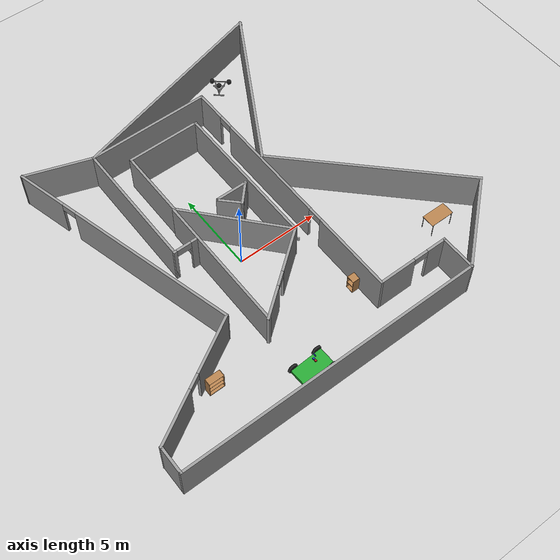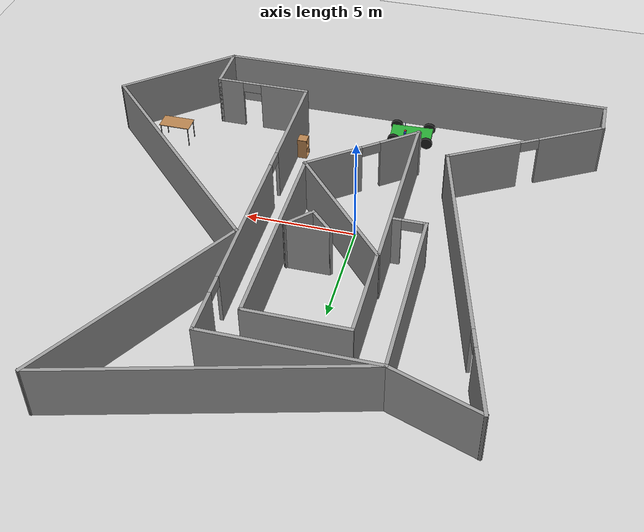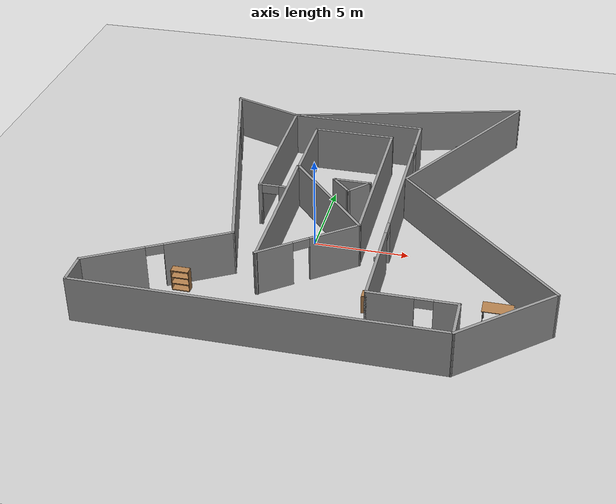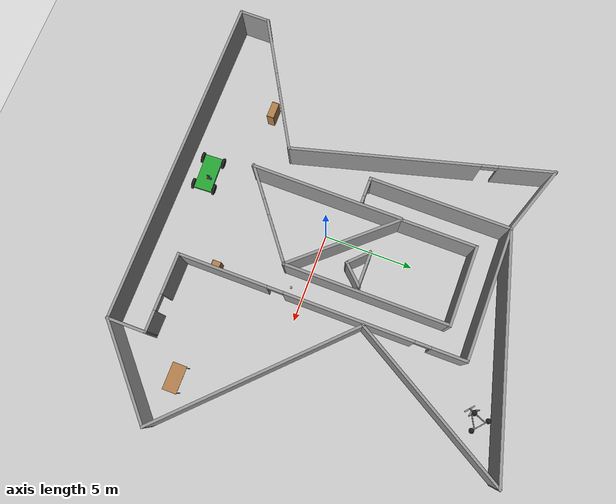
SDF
<sdf version="1.7">
 <world name="custom">
  <model name="ground_plane">
   <static>1</static>
   <link name="link">
    <collision name="collision">
     <geometry><plane><normal>0 0 1</normal><size>100 100</size></plane></geometry>
     <surface><friction><ode><mu>100</mu><mu2>50</mu2></ode></friction></surface>
    </collision>
    <visual name="visual">
     <cast_shadows>0</cast_shadows>
     <geometry><plane><normal>0 0 1</normal><size>100 100</size></plane></geometry>
     <material>
      <script><uri>file://media/materials/scripts/gazebo.material</uri><name>Gazebo/Grey</name></script>
     </material>
    </visual>
   </link>
  </model>
  <light name="sun" type="directional">
   <pose>0 0 10 0 -0 0</pose>
   <diffuse>0.8 0.8 0.8 1</diffuse>
   <specular>0.2 0.2 0.2 1</specular>
   <attenuation>
    <range>1000</range>
    <constant>0.9</constant>
    <linear>0.01</linear>
    <quadratic>0.001</quadratic>
   </attenuation>
   <direction>-0.5 0.1 -0.9</direction>
   <spot><inner_angle>0</inner_angle><outer_angle>0</outer_angle><falloff>0</falloff></spot>
  </light>
  <scene><shadows>0</shadows><ambient>0.4 0.4 0.4 1</ambient><background>0.7 0.7 0.7 1</background></scene>
  <physics type="ode">
   <real_time_update_rate>1000</real_time_update_rate>
   <max_step_size>0.001</max_step_size>
   <real_time_factor>1</real_time_factor>
   <ode>
    <solver>
     <type>quick</type>
     <iters>150</iters>
     <precon_iters>0</precon_iters>
     <sor>1.4</sor>
     <use_dynamic_moi_rescaling>1</use_dynamic_moi_rescaling>
    </solver>
    <constraints>
     <cfm>1e-05</cfm>
     <erp>0.2</erp>
     <contact_max_correcting_vel>2000</contact_max_correcting_vel>
     <contact_surface_layer>0.01</contact_surface_layer>
    </constraints>
   </ode>
  </physics>
  <gravity>0 0 -9.8</gravity>
  <magnetic_field>6e-06 2.3e-05 -4.2e-05</magnetic_field>
  <atmosphere type="adiabatic"/>
  <audio><device>default</device></audio>
  <spherical_coordinates>
   <surface_model>EARTH_WGS84</surface_model>
   <latitude_deg>0</latitude_deg>
   <longitude_deg>0</longitude_deg>
   <elevation>0</elevation>
   <heading_deg>0</heading_deg>
  </spherical_coordinates>
  <model name="random">
   <pose>1.38852 1.87257 0 0 -0 0</pose>
   <link name="Wall_1">
    <collision name="Wall_1_Collision">
     <geometry><box><size>4.5 0.15 2.5</size></box></geometry>
     <pose>0 0 1.25 0 -0 0</pose>
    </collision>
    <visual name="Wall_1_Visual">
     <pose>0 0 1.25 0 -0 0</pose>
     <geometry><box><size>4.5 0.15 2.5</size></box></geometry>
     <material>
      <script><uri>file://media/materials/scripts/gazebo.material</uri><name>Gazebo/Grey</name></script>
      <ambient>1 1 1 1</ambient>
     </material>
     <meta><layer>0</layer></meta>
    </visual>
    <pose>-0.932959 5.89096 0 0 -0 3.14159</pose>
   </link>
   <link name="Wall_11">
    <pose>-4.01912 -0.568563 0 0 -0 3.14159</pose>
    <visual name="Wall_11_Visual_0">
     <pose>-0.556592 0 1.25 0 -0 0</pose>
     <geometry><box><size>0.386816 0.15 2.5</size></box></geometry>
     <material>
      <script><uri>file://media/materials/scripts/gazebo.material</uri><name>Gazebo/Grey</name></script>
      <ambient>1 1 1 1</ambient>
     </material>
     <meta><layer>0</layer></meta>
    </visual>
    <collision name="Wall_11_Collision_0">
     <geometry><box><size>0.386816 0.15 2.5</size></box></geometry>
     <pose>-0.556592 0 1.25 0 -0 0</pose>
    </collision>
    <visual name="Wall_11_Visual_1">
     <pose>0.643408 0 1.25 0 -0 0</pose>
     <geometry><box><size>0.213184 0.15 2.5</size></box></geometry>
     <material>
      <script><uri>file://media/materials/scripts/gazebo.material</uri><name>Gazebo/Grey</name></script>
      <ambient>1 1 1 1</ambient>
     </material>
     <meta><layer>0</layer></meta>
    </visual>
    <collision name="Wall_11_Collision_1">
     <geometry><box><size>0.213184 0.15 2.5</size></box></geometry>
     <pose>0.643408 0 1.25 0 -0 0</pose>
    </collision>
    <visual name="Wall_11_Visual_2">
     <pose>0.086816 0 2.25 0 -0 0</pose>
     <geometry><box><size>0.9 0.15 0.5</size></box></geometry>
     <material>
      <script><uri>file://media/materials/scripts/gazebo.material</uri><name>Gazebo/Grey</name></script>
      <ambient>1 1 1 1</ambient>
     </material>
     <meta><layer>0</layer></meta>
    </visual>
    <collision name="Wall_11_Collision_2">
     <geometry><box><size>0.9 0.15 0.5</size></box></geometry>
     <pose>0.086816 0 2.25 0 -0 0</pose>
    </collision>
   </link>
   <link name="Wall_12">
    <collision name="Wall_12_Collision">
     <geometry><box><size>8 0.15 2.5</size></box></geometry>
     <pose>0 0 1.25 0 -0 0</pose>
    </collision>
    <visual name="Wall_12_Visual">
     <pose>0 0 1.25 0 -0 0</pose>
     <geometry><box><size>8 0.15 2.5</size></box></geometry>
     <material>
      <script><uri>file://media/materials/scripts/gazebo.material</uri><name>Gazebo/Grey</name></script>
      <ambient>1 1 1 1</ambient>
     </material>
     <meta><layer>0</layer></meta>
    </visual>
    <pose>-4.69412 3.35644 0 0 -0 1.5708</pose>
   </link>
   <link name="Wall_13">
    <collision name="Wall_13_Collision">
     <geometry><box><size>7.5 0.15 2.5</size></box></geometry>
     <pose>0 0 1.25 0 -0 0</pose>
    </collision>
    <visual name="Wall_13_Visual">
     <pose>0 0 1.25 0 -0 0</pose>
     <geometry><box><size>7.5 0.15 2.5</size></box></geometry>
     <material>
      <script><uri>file://media/materials/scripts/gazebo.material</uri><name>Gazebo/Grey</name></script>
      <ambient>1 1 1 1</ambient>
     </material>
     <meta><layer>0</layer></meta>
    </visual>
    <pose>-1.01912 7.28144 0 0 -0 0</pose>
   </link>
   <link name="Wall_14">
    <pose>2.65588 -0.643563 0 0 -0 -1.5708</pose>
    <visual name="Wall_14_Visual_0">
     <pose>-6.99776 0 1.25 0 -0 0</pose>
     <geometry><box><size>2.00447 0.15 2.5</size></box></geometry>
     <material>
      <script><uri>file://media/materials/scripts/gazebo.material</uri><name>Gazebo/Grey</name></script>
      <ambient>1 1 1 1</ambient>
     </material>
     <meta><layer>0</layer></meta>
    </visual>
    <collision name="Wall_14_Collision_0">
     <geometry><box><size>2.00447 0.15 2.5</size></box></geometry>
     <pose>-6.99776 0 1.25 0 -0 0</pose>
    </collision>
    <visual name="Wall_14_Visual_1">
     <pose>-1.51005 0 1.25 0 -0 0</pose>
     <geometry><box><size>7.17095 0.15 2.5</size></box></geometry>
     <material>
      <script><uri>file://media/materials/scripts/gazebo.material</uri><name>Gazebo/Grey</name></script>
      <ambient>1 1 1 1</ambient>
     </material>
     <meta><layer>0</layer></meta>
    </visual>
    <collision name="Wall_14_Collision_1">
     <geometry><box><size>7.17095 0.15 2.5</size></box></geometry>
     <pose>-1.51005 0 1.25 0 -0 0</pose>
    </collision>
    <visual name="Wall_14_Visual_2">
     <pose>5.48771 0 1.25 0 -0 0</pose>
     <geometry><box><size>5.02458 0.15 2.5</size></box></geometry>
     <material>
      <script><uri>file://media/materials/scripts/gazebo.material</uri><name>Gazebo/Grey</name></script>
      <ambient>1 1 1 1</ambient>
     </material>
     <meta><layer>0</layer></meta>
    </visual>
    <collision name="Wall_14_Collision_2">
     <geometry><box><size>5.02458 0.15 2.5</size></box></geometry>
     <pose>5.48771 0 1.25 0 -0 0</pose>
    </collision>
    <visual name="Wall_14_Visual_3">
     <pose>-5.54552 0 2.25 0 -0 0</pose>
     <geometry><box><size>0.9 0.15 0.5</size></box></geometry>
     <material>
      <script><uri>file://media/materials/scripts/gazebo.material</uri><name>Gazebo/Grey</name></script>
      <ambient>1 1 1 1</ambient>
     </material>
     <meta><layer>0</layer></meta>
    </visual>
    <collision name="Wall_14_Collision_3">
     <geometry><box><size>0.9 0.15 0.5</size></box></geometry>
     <pose>-5.54552 0 2.25 0 -0 0</pose>
    </collision>
    <visual name="Wall_14_Visual_4">
     <pose>2.52542 0 2.25 0 -0 0</pose>
     <geometry><box><size>0.9 0.15 0.5</size></box></geometry>
     <material>
      <script><uri>file://media/materials/scripts/gazebo.material</uri><name>Gazebo/Grey</name></script>
      <ambient>1 1 1 1</ambient>
     </material>
     <meta><layer>0</layer></meta>
    </visual>
    <collision name="Wall_14_Collision_4">
     <geometry><box><size>0.9 0.15 0.5</size></box></geometry>
     <pose>2.52542 0 2.25 0 -0 0</pose>
    </collision>
   </link>
   <link name="Wall_15">
    <pose>4.83088 -8.56856 0 0 -0 0</pose>
    <visual name="Wall_15_Visual_0">
     <pose>-1.08345 0 1.25 0 -0 0</pose>
     <geometry><box><size>2.3331 0.15 2.5</size></box></geometry>
     <material>
      <script><uri>file://media/materials/scripts/gazebo.material</uri><name>Gazebo/Grey</name></script>
      <ambient>1 1 1 1</ambient>
     </material>
     <meta><layer>0</layer></meta>
    </visual>
    <collision name="Wall_15_Collision_0">
     <geometry><box><size>2.3331 0.15 2.5</size></box></geometry>
     <pose>-1.08345 0 1.25 0 -0 0</pose>
    </collision>
    <visual name="Wall_15_Visual_1">
     <pose>1.61655 0 1.25 0 -0 0</pose>
     <geometry><box><size>1.2669 0.15 2.5</size></box></geometry>
     <material>
      <script><uri>file://media/materials/scripts/gazebo.material</uri><name>Gazebo/Grey</name></script>
      <ambient>1 1 1 1</ambient>
     </material>
     <meta><layer>0</layer></meta>
    </visual>
    <collision name="Wall_15_Collision_1">
     <geometry><box><size>1.2669 0.15 2.5</size></box></geometry>
     <pose>1.61655 0 1.25 0 -0 0</pose>
    </collision>
    <visual name="Wall_15_Visual_2">
     <pose>0.533097 0 2.25 0 -0 0</pose>
     <geometry><box><size>0.9 0.15 0.5</size></box></geometry>
     <material>
      <script><uri>file://media/materials/scripts/gazebo.material</uri><name>Gazebo/Grey</name></script>
      <ambient>1 1 1 1</ambient>
     </material>
     <meta><layer>0</layer></meta>
    </visual>
    <collision name="Wall_15_Collision_2">
     <geometry><box><size>0.9 0.15 0.5</size></box></geometry>
     <pose>0.533097 0 2.25 0 -0 0</pose>
    </collision>
   </link>
   <link name="Wall_16">
    <collision name="Wall_16_Collision">
     <geometry><box><size>2.25 0.15 2.5</size></box></geometry>
     <pose>0 0 1.25 0 -0 0</pose>
    </collision>
    <visual name="Wall_16_Visual">
     <pose>0 0 1.25 0 -0 0</pose>
     <geometry><box><size>2.25 0.15 2.5</size></box></geometry>
     <material>
      <script><uri>file://media/materials/scripts/gazebo.material</uri><name>Gazebo/Grey</name></script>
      <ambient>1 1 1 1</ambient>
     </material>
     <meta><layer>0</layer></meta>
    </visual>
    <pose>7.00588 -9.61856 0 0 -0 -1.5708</pose>
   </link>
   <link name="Wall_17">
    <collision name="Wall_17_Collision">
     <geometry><box><size>18.5 0.15 2.5</size></box></geometry>
     <pose>0 0 1.25 0 -0 0</pose>
    </collision>
    <visual name="Wall_17_Visual">
     <pose>0 0 1.25 0 -0 0</pose>
     <geometry><box><size>18.5 0.15 2.5</size></box></geometry>
     <material>
      <script><uri>file://media/materials/scripts/gazebo.material</uri><name>Gazebo/Grey</name></script>
      <ambient>1 1 1 1</ambient>
     </material>
     <meta><layer>0</layer></meta>
    </visual>
    <pose>-2.16912 -10.6686 0 0 -0 3.14159</pose>
   </link>
   <link name="Wall_18">
    <collision name="Wall_18_Collision">
     <geometry><box><size>1.75 0.15 2.5</size></box></geometry>
     <pose>0 0 1.25 0 -0 0</pose>
    </collision>
    <visual name="Wall_18_Visual">
     <pose>0 0 1.25 0 -0 0</pose>
     <geometry><box><size>1.75 0.15 2.5</size></box></geometry>
     <material>
      <script><uri>file://media/materials/scripts/gazebo.material</uri><name>Gazebo/Grey</name></script>
      <ambient>1 1 1 1</ambient>
     </material>
     <meta><layer>0</layer></meta>
    </visual>
    <pose>-11.3441 -9.86856 0 0 -0 1.5708</pose>
   </link>
   <link name="Wall_19">
    <pose>-8.05322 -7.16856 0 0 -0 0.523599</pose>
    <visual name="Wall_19_Visual_0">
     <pose>-2.23815 0 1.25 0 -0 0</pose>
     <geometry><box><size>3.27371 0.15 2.5</size></box></geometry>
     <material>
      <script><uri>file://media/materials/scripts/gazebo.material</uri><name>Gazebo/Grey</name></script>
      <ambient>1 1 1 1</ambient>
     </material>
     <meta><layer>0</layer></meta>
    </visual>
    <collision name="Wall_19_Collision_0">
     <geometry><box><size>3.27371 0.15 2.5</size></box></geometry>
     <pose>-2.23815 0 1.25 0 -0 0</pose>
    </collision>
    <visual name="Wall_19_Visual_1">
     <pose>2.08685 0 1.25 0 -0 0</pose>
     <geometry><box><size>3.5763 0.15 2.5</size></box></geometry>
     <material>
      <script><uri>file://media/materials/scripts/gazebo.material</uri><name>Gazebo/Grey</name></script>
      <ambient>1 1 1 1</ambient>
     </material>
     <meta><layer>0</layer></meta>
    </visual>
    <collision name="Wall_19_Collision_1">
     <geometry><box><size>3.5763 0.15 2.5</size></box></geometry>
     <pose>2.08685 0 1.25 0 -0 0</pose>
    </collision>
    <visual name="Wall_19_Visual_2">
     <pose>-0.151295 0 2.25 0 -0 0</pose>
     <geometry><box><size>0.9 0.15 0.5</size></box></geometry>
     <material>
      <script><uri>file://media/materials/scripts/gazebo.material</uri><name>Gazebo/Grey</name></script>
      <ambient>1 1 1 1</ambient>
     </material>
     <meta><layer>0</layer></meta>
    </visual>
    <collision name="Wall_19_Collision_2">
     <geometry><box><size>0.9 0.15 0.5</size></box></geometry>
     <pose>-0.151295 0 2.25 0 -0 0</pose>
    </collision>
   </link>
   <link name="Wall_2">
    <collision name="Wall_2_Collision">
     <geometry><box><size>4.33045 0.15 2.5</size></box></geometry>
     <pose>0 0 1.25 0 -0 0</pose>
    </collision>
    <visual name="Wall_2_Visual">
     <pose>0 0 1.25 0 -0 0</pose>
     <geometry><box><size>4.33045 0.15 2.5</size></box></geometry>
     <material>
      <script><uri>file://media/materials/scripts/gazebo.material</uri><name>Gazebo/Grey</name></script>
      <ambient>1 1 1 1</ambient>
     </material>
     <meta><layer>0</layer></meta>
    </visual>
    <pose>-3.12807 3.80073 0 0 -0 -1.5708</pose>
   </link>
   <link name="Wall_20">
    <pose>-6.61935 1.66196 0 0 -0 1.8326</pose>
    <visual name="Wall_20_Visual_0">
     <pose>-2.02747 0 1.25 0 -0 0</pose>
     <geometry><box><size>10.445 0.15 2.5</size></box></geometry>
     <material>
      <script><uri>file://media/materials/scripts/gazebo.material</uri><name>Gazebo/Grey</name></script>
      <ambient>1 1 1 1</ambient>
     </material>
     <meta><layer>0</layer></meta>
    </visual>
    <collision name="Wall_20_Collision_0">
     <geometry><box><size>10.445 0.15 2.5</size></box></geometry>
     <pose>-2.02747 0 1.25 0 -0 0</pose>
    </collision>
    <visual name="Wall_20_Visual_1">
     <pose>5.67253 0 1.25 0 -0 0</pose>
     <geometry><box><size>3.15495 0.15 2.5</size></box></geometry>
     <material>
      <script><uri>file://media/materials/scripts/gazebo.material</uri><name>Gazebo/Grey</name></script>
      <ambient>1 1 1 1</ambient>
     </material>
     <meta><layer>0</layer></meta>
    </visual>
    <collision name="Wall_20_Collision_1">
     <geometry><box><size>3.15495 0.15 2.5</size></box></geometry>
     <pose>5.67253 0 1.25 0 -0 0</pose>
    </collision>
    <visual name="Wall_20_Visual_2">
     <pose>3.64505 0 2.25 0 -0 0</pose>
     <geometry><box><size>0.9 0.15 0.5</size></box></geometry>
     <material>
      <script><uri>file://media/materials/scripts/gazebo.material</uri><name>Gazebo/Grey</name></script>
      <ambient>1 1 1 1</ambient>
     </material>
     <meta><layer>0</layer></meta>
    </visual>
    <collision name="Wall_20_Collision_2">
     <geometry><box><size>0.9 0.15 0.5</size></box></geometry>
     <pose>3.64505 0 2.25 0 -0 0</pose>
    </collision>
   </link>
   <link name="Wall_21">
    <collision name="Wall_21_Collision">
     <geometry><box><size>4.15304 0.15 2.5</size></box></geometry>
     <pose>0 0 1.25 0 -0 0</pose>
    </collision>
    <visual name="Wall_21_Visual">
     <pose>0 0 1.25 0 -0 0</pose>
     <geometry><box><size>4.15304 0.15 2.5</size></box></geometry>
     <material>
      <script><uri>file://media/materials/scripts/gazebo.material</uri><name>Gazebo/Grey</name></script>
      <ambient>1 1 1 1</ambient>
     </material>
     <meta><layer>0</layer></meta>
    </visual>
    <pose>-6.58525 7.93696 0 0 -0 -0.333667</pose>
   </link>
   <link name="Wall_22">
    <collision name="Wall_22_Collision">
     <geometry><box><size>13.25 0.15 2.5</size></box></geometry>
     <pose>0 0 1.25 0 -0 0</pose>
    </collision>
    <visual name="Wall_22_Visual">
     <pose>0 0 1.25 0 -0 0</pose>
     <geometry><box><size>13.25 0.15 2.5</size></box></geometry>
     <material>
      <script><uri>file://media/materials/scripts/gazebo.material</uri><name>Gazebo/Grey</name></script>
      <ambient>1 1 1 1</ambient>
     </material>
     <meta><layer>0</layer></meta>
    </visual>
    <pose>1.6327 8.9767 0 0 -0 0.261799</pose>
   </link>
   <link name="Wall_23">
    <collision name="Wall_23_Collision">
     <geometry><box><size>10.5 0.15 2.5</size></box></geometry>
     <pose>0 0 1.25 0 -0 0</pose>
    </collision>
    <visual name="Wall_23_Visual">
     <pose>0 0 1.25 0 -0 0</pose>
     <geometry><box><size>10.5 0.15 2.5</size></box></geometry>
     <material>
      <script><uri>file://media/materials/scripts/gazebo.material</uri><name>Gazebo/Grey</name></script>
      <ambient>1 1 1 1</ambient>
     </material>
     <meta><layer>0</layer></meta>
    </visual>
    <pose>5.37201 6.19029 0 0 -0 -2.0944</pose>
   </link>
   <link name="Wall_24">
    <collision name="Wall_24_Collision">
     <geometry><box><size>12.25 0.15 2.5</size></box></geometry>
     <pose>0 0 1.25 0 -0 0</pose>
    </collision>
    <visual name="Wall_24_Visual">
     <pose>0 0 1.25 0 -0 0</pose>
     <geometry><box><size>12.25 0.15 2.5</size></box></geometry>
     <material>
      <script><uri>file://media/materials/scripts/gazebo.material</uri><name>Gazebo/Grey</name></script>
      <ambient>1 1 1 1</ambient>
     </material>
     <meta><layer>0</layer></meta>
    </visual>
    <pose>7.06251 -2.56939 0 0 -0 -0.785398</pose>
   </link>
   <link name="Wall_25">
    <collision name="Wall_25_Collision">
     <geometry><box><size>5.92844 0.15 2.5</size></box></geometry>
     <pose>0 0 1.25 0 -0 0</pose>
    </collision>
    <visual name="Wall_25_Visual">
     <pose>0 0 1.25 0 -0 0</pose>
     <geometry><box><size>5.92844 0.15 2.5</size></box></geometry>
     <material>
      <script><uri>file://media/materials/scripts/gazebo.material</uri><name>Gazebo/Grey</name></script>
      <ambient>1 1 1 1</ambient>
     </material>
     <meta><layer>0</layer></meta>
    </visual>
    <pose>9.17319 -8.75798 0 0 -0 -2.41907</pose>
   </link>
   <link name="Wall_27">
    <collision name="Wall_27_Collision">
     <geometry><box><size>2 0.15 2.5</size></box></geometry>
     <pose>0 0 1.25 0 -0 0</pose>
    </collision>
    <visual name="Wall_27_Visual">
     <pose>0 0 1.25 0 -0 0</pose>
     <geometry><box><size>2 0.15 2.5</size></box></geometry>
     <material>
      <script><uri>file://media/materials/scripts/gazebo.material</uri><name>Gazebo/Grey</name></script>
      <ambient>1 1 1 1</ambient>
     </material>
     <meta><layer>0</layer></meta>
    </visual>
    <pose>0.049186 0.795499 0 0 -0 0</pose>
   </link>
   <link name="Wall_28">
    <collision name="Wall_28_Collision">
     <geometry><box><size>1.53813 0.15 2.5</size></box></geometry>
     <pose>0 0 1.25 0 -0 0</pose>
    </collision>
    <visual name="Wall_28_Visual">
     <pose>0 0 1.25 0 -0 0</pose>
     <geometry><box><size>1.53813 0.15 2.5</size></box></geometry>
     <material>
      <script><uri>file://media/materials/scripts/gazebo.material</uri><name>Gazebo/Grey</name></script>
      <ambient>1 1 1 1</ambient>
     </material>
     <meta><layer>0</layer></meta>
    </visual>
    <pose>0.496888 0.318202 0 0 -0 -2.32909</pose>
   </link>
   <link name="Wall_29">
    <collision name="Wall_29_Collision">
     <geometry><box><size>1.5 0.15 2.5</size></box></geometry>
     <pose>0 0 1.25 0 -0 0</pose>
    </collision>
    <visual name="Wall_29_Visual">
     <pose>0 0 1.25 0 -0 0</pose>
     <geometry><box><size>1.5 0.15 2.5</size></box></geometry>
     <material>
      <script><uri>file://media/materials/scripts/gazebo.material</uri><name>Gazebo/Grey</name></script>
      <ambient>1 1 1 1</ambient>
     </material>
     <meta><layer>0</layer></meta>
    </visual>
    <pose>-0.457706 0.291602 0 0 -0 2.35619</pose>
   </link>
   <link name="Wall_3">
    <collision name="Wall_3_Collision">
     <geometry><box><size>6.6728 0.15 2.5</size></box></geometry>
     <pose>0 0 1.25 0 -0 0</pose>
    </collision>
    <visual name="Wall_3_Visual">
     <pose>0 0 1.25 0 -0 0</pose>
     <geometry><box><size>6.6728 0.15 2.5</size></box></geometry>
     <material>
      <script><uri>file://media/materials/scripts/gazebo.material</uri><name>Gazebo/Grey</name></script>
      <ambient>1 1 1 1</ambient>
     </material>
     <meta><layer>0</layer></meta>
    </visual>
    <pose>-0.973744 -0.738088 0 0 -0 -0.849241</pose>
   </link>
   <link name="Wall_4">
    <collision name="Wall_4_Collision">
     <geometry><box><size>9.25 0.15 2.5</size></box></geometry>
     <pose>0 0 1.25 0 -0 0</pose>
    </collision>
    <visual name="Wall_4_Visual">
     <pose>0 0 1.25 0 -0 0</pose>
     <geometry><box><size>9.25 0.15 2.5</size></box></geometry>
     <material>
      <script><uri>file://media/materials/scripts/gazebo.material</uri><name>Gazebo/Grey</name></script>
      <ambient>1 1 1 1</ambient>
     </material>
     <meta><layer>0</layer></meta>
    </visual>
    <pose>1.23409 1.30982 0 0 -0 1.5708</pose>
   </link>
   <link name="Wall_6">
    <collision name="Wall_6_Collision">
     <geometry><box><size>8.5 0.15 2.5</size></box></geometry>
     <pose>0 0 1.25 0 -0 0</pose>
    </collision>
    <visual name="Wall_6_Visual">
     <pose>0 0 1.25 0 -0 0</pose>
     <geometry><box><size>8.5 0.15 2.5</size></box></geometry>
     <material>
      <script><uri>file://media/materials/scripts/gazebo.material</uri><name>Gazebo/Grey</name></script>
      <ambient>1 1 1 1</ambient>
     </material>
     <meta><layer>0</layer></meta>
    </visual>
    <pose>-3.18229 -2.51851 0 0 -0 -1.5708</pose>
   </link>
   <link name="Wall_7">
    <pose>-0.994331 -4.96684 0 0 -0 0.659208</pose>
    <visual name="Wall_7_Visual_0">
     <pose>-1.86201 0 1.25 0 -0 0</pose>
     <geometry><box><size>2.06413 0.15 2.5</size></box></geometry>
     <material>
      <script><uri>file://media/materials/scripts/gazebo.material</uri><name>Gazebo/Grey</name></script>
      <ambient>1 1 1 1</ambient>
     </material>
     <meta><layer>0</layer></meta>
    </visual>
    <collision name="Wall_7_Collision_0">
     <geometry><box><size>2.06413 0.15 2.5</size></box></geometry>
     <pose>-1.86201 0 1.25 0 -0 0</pose>
    </collision>
    <visual name="Wall_7_Visual_1">
     <pose>1.48206 0 1.25 0 -0 0</pose>
     <geometry><box><size>2.82403 0.15 2.5</size></box></geometry>
     <material>
      <script><uri>file://media/materials/scripts/gazebo.material</uri><name>Gazebo/Grey</name></script>
      <ambient>1 1 1 1</ambient>
     </material>
     <meta><layer>0</layer></meta>
    </visual>
    <collision name="Wall_7_Collision_1">
     <geometry><box><size>2.82403 0.15 2.5</size></box></geometry>
     <pose>1.48206 0 1.25 0 -0 0</pose>
    </collision>
    <visual name="Wall_7_Visual_2">
     <pose>-0.37995 0 2.25 0 -0 0</pose>
     <geometry><box><size>0.9 0.15 0.5</size></box></geometry>
     <material>
      <script><uri>file://media/materials/scripts/gazebo.material</uri><name>Gazebo/Grey</name></script>
      <ambient>1 1 1 1</ambient>
     </material>
     <meta><layer>0</layer></meta>
    </visual>
    <collision name="Wall_7_Collision_2">
     <geometry><box><size>0.9 0.15 0.5</size></box></geometry>
     <pose>-0.37995 0 2.25 0 -0 0</pose>
    </collision>
   </link>
   <static>1</static>
  </model>
  <model name="cabinet">
   <static>1</static>
   <link name="cabinet_bottom_plate">
    <inertial>
     <pose>0 0 -1 0 -0 0</pose>
     <inertia><ixx>2.05</ixx><ixy>0</ixy><ixz>0</ixz><iyy>2.05</iyy><iyz>0</iyz><izz>2.05</izz></inertia>
     <mass>25</mass>
    </inertial>
    <collision name="cabinet_bottom_plate_geom">
     <pose>0 0 0.01 0 -0 0</pose>
     <geometry><box><size>0.45 0.45 0.02</size></box></geometry>
    </collision>
    <visual name="cabinet_bottom_plate_geom_visual">
     <pose>0 0 0.01 0 -0 0</pose>
     <geometry><box><size>0.45 0.45 0.02</size></box></geometry>
     <material>
      <script><uri>file://media/materials/scripts/gazebo.material</uri><name>Gazebo/Wood</name></script>
     </material>
    </visual>
    <collision name="cabinet_bottom_plate_geom_cabinet_back_plate">
     <pose>0.235 0 0.51 0 -0 0</pose>
     <geometry><box><size>0.02 0.45 1.02</size></box></geometry>
    </collision>
    <visual name="cabinet_bottom_plate_geom_cabinet_back_plate_visual">
     <pose>0.235 0 0.51 0 -0 0</pose>
     <geometry><box><size>0.02 0.45 1.02</size></box></geometry>
     <material>
      <script><uri>file://media/materials/scripts/gazebo.material</uri><name>Gazebo/Wood</name></script>
     </material>
    </visual>
    <collision name="cabinet_bottom_plate_geom_cabinet_left_plate">
     <pose>0 0.235 0.51 0 -0 0</pose>
     <geometry><box><size>0.45 0.02 1.02</size></box></geometry>
    </collision>
    <visual name="cabinet_bottom_plate_geom_cabinet_left_plate_visual">
     <pose>0 0.235 0.51 0 -0 0</pose>
     <geometry><box><size>0.45 0.02 1.02</size></box></geometry>
     <material>
      <script><uri>file://media/materials/scripts/gazebo.material</uri><name>Gazebo/Wood</name></script>
     </material>
    </visual>
    <collision name="cabinet_bottom_plate_geom_cabinet_middle_plate">
     <pose>0 0 0.51 0 -0 0</pose>
     <geometry><box><size>0.45 0.45 0.02</size></box></geometry>
    </collision>
    <visual name="cabinet_bottom_plate_geom_cabinet_middle_plate_visual">
     <pose>0 0 0.51 0 -0 0</pose>
     <geometry><box><size>0.45 0.45 0.02</size></box></geometry>
     <material>
      <script><uri>file://media/materials/scripts/gazebo.material</uri><name>Gazebo/Wood</name></script>
     </material>
    </visual>
    <collision name="cabinet_bottom_plate_geom_cabinet_right_plate">
     <pose>0 -0.235 0.51 0 -0 0</pose>
     <geometry><box><size>0.45 0.02 1.02</size></box></geometry>
    </collision>
    <visual name="cabinet_bottom_plate_geom_cabinet_right_plate_visual">
     <pose>0 -0.235 0.51 0 -0 0</pose>
     <geometry><box><size>0.45 0.02 1.02</size></box></geometry>
     <material>
      <script><uri>file://media/materials/scripts/gazebo.material</uri><name>Gazebo/Wood</name></script>
     </material>
    </visual>
    <collision name="cabinet_bottom_plate_geom_cabinet_top_plate">
     <pose>0 0 1.01 0 -0 0</pose>
     <geometry><box><size>0.45 0.45 0.02</size></box></geometry>
    </collision>
    <visual name="cabinet_bottom_plate_geom_cabinet_top_plate_visual">
     <pose>0 0 1.01 0 -0 0</pose>
     <geometry><box><size>0.45 0.45 0.02</size></box></geometry>
     <material>
      <script><uri>file://media/materials/scripts/gazebo.material</uri><name>Gazebo/Wood</name></script>
     </material>
    </visual>
   </link>
   <pose>3.74567 -4.96249 0 0 -0 0</pose>
  </model>
  <model name="beer">
   <link name="link">
    <pose>0 0 0.115 0 -0 0</pose>
    <inertial>
     <mass>0.39</mass>
     <inertia><ixx>0.00058</ixx><ixy>0</ixy><ixz>0</ixz><iyy>0.00058</iyy><iyz>0</iyz><izz>0.00019</izz></inertia>
    </inertial>
    <collision name="collision">
     <geometry><cylinder><radius>0.055</radius><length>0.23</length></cylinder></geometry>
    </collision>
    <visual name="visual">
     <geometry><cylinder><radius>0.055</radius><length>0.23</length></cylinder></geometry>
     <material>
      <script>
       <uri>model://beer/materials/scripts</uri>
       <uri>model://beer/materials/textures</uri>
       <name>Beer/Diffuse</name>
      </script>
     </material>
    </visual>
   </link>
   <pose>3.36191 -0.796595 -9e-06 4e-06 -2e-06 0.000184</pose>
  </model>
  <model name="bookshelf">
   <static>1</static>
   <link name="link">
    <inertial><mass>1</mass></inertial>
    <collision name="back">
     <pose>0 0.005 0.6 0 -0 0</pose>
     <geometry><box><size>0.9 0.01 1.2</size></box></geometry>
    </collision>
    <visual name="visual1">
     <pose>0 0.005 0.6 0 -0 0</pose>
     <geometry><box><size>0.9 0.01 1.2</size></box></geometry>
     <material>
      <script><uri>file://media/materials/scripts/gazebo.material</uri><name>Gazebo/Wood</name></script>
     </material>
    </visual>
    <collision name="left_side">
     <pose>0.45 -0.195 0.6 0 -0 0</pose>
     <geometry><box><size>0.02 0.4 1.2</size></box></geometry>
    </collision>
    <visual name="visual2">
     <pose>0.45 -0.195 0.6 0 -0 0</pose>
     <geometry><box><size>0.02 0.4 1.2</size></box></geometry>
     <material>
      <script><uri>file://media/materials/scripts/gazebo.material</uri><name>Gazebo/Wood</name></script>
     </material>
    </visual>
    <collision name="right_side">
     <pose>-0.45 -0.195 0.6 0 -0 0</pose>
     <geometry><box><size>0.02 0.4 1.2</size></box></geometry>
    </collision>
    <visual name="visual3">
     <pose>-0.45 -0.195 0.6 0 -0 0</pose>
     <geometry><box><size>0.02 0.4 1.2</size></box></geometry>
     <material>
      <script><uri>file://media/materials/scripts/gazebo.material</uri><name>Gazebo/Wood</name></script>
     </material>
    </visual>
    <collision name="bottom">
     <pose>0 -0.195 0.03 0 -0 0</pose>
     <geometry><box><size>0.88 0.4 0.06</size></box></geometry>
    </collision>
    <visual name="visual4">
     <pose>0 -0.195 0.03 0 -0 0</pose>
     <geometry><box><size>0.88 0.4 0.06</size></box></geometry>
     <material>
      <script><uri>file://media/materials/scripts/gazebo.material</uri><name>Gazebo/Wood</name></script>
     </material>
    </visual>
    <collision name="top">
     <pose>0 -0.195 1.19 0 -0 0</pose>
     <geometry><box><size>0.88 0.4 0.02</size></box></geometry>
    </collision>
    <visual name="visual5">
     <pose>0 -0.195 1.19 0 -0 0</pose>
     <geometry><box><size>0.88 0.4 0.02</size></box></geometry>
     <material>
      <script><uri>file://media/materials/scripts/gazebo.material</uri><name>Gazebo/Wood</name></script>
     </material>
    </visual>
    <collision name="low_shelf">
     <pose>0 -0.195 0.43 0 -0 0</pose>
     <geometry><box><size>0.88 0.4 0.02</size></box></geometry>
    </collision>
    <visual name="visual6">
     <pose>0 -0.195 0.43 0 -0 0</pose>
     <geometry><box><size>0.88 0.4 0.02</size></box></geometry>
     <material>
      <script><uri>file://media/materials/scripts/gazebo.material</uri><name>Gazebo/Wood</name></script>
     </material>
    </visual>
    <collision name="high_shelf">
     <pose>0 -0.195 0.8 0 -0 0</pose>
     <geometry><box><size>0.88 0.4 0.02</size></box></geometry>
    </collision>
    <visual name="visual7">
     <pose>0 -0.195 0.8 0 -0 0</pose>
     <geometry><box><size>0.88 0.4 0.02</size></box></geometry>
     <material>
      <script><uri>file://media/materials/scripts/gazebo.material</uri><name>Gazebo/Wood</name></script>
     </material>
    </visual>
   </link>
   <pose>-5.56704 -5.08051 0 0 -0 0</pose>
  </model>
  <model name="table">
   <static>1</static>
   <link name="link">
    <collision name="surface">
     <pose>0 0 1 0 -0 0</pose>
     <geometry><box><size>1.5 0.8 0.03</size></box></geometry>
     <surface><friction><ode><mu>0.6</mu><mu2>0.6</mu2></ode></friction></surface>
    </collision>
    <visual name="visual1">
     <pose>0 0 1 0 -0 0</pose>
     <geometry><box><size>1.5 0.8 0.03</size></box></geometry>
     <material>
      <script><uri>file://media/materials/scripts/gazebo.material</uri><name>Gazebo/Wood</name></script>
     </material>
    </visual>
    <collision name="front_left_leg">
     <pose>0.68 0.38 0.5 0 -0 0</pose>
     <geometry><cylinder><radius>0.02</radius><length>1</length></cylinder></geometry>
    </collision>
    <visual name="front_left_leg">
     <pose>0.68 0.38 0.5 0 -0 0</pose>
     <geometry><cylinder><radius>0.02</radius><length>1</length></cylinder></geometry>
     <material>
      <script><uri>file://media/materials/scripts/gazebo.material</uri><name>Gazebo/Grey</name></script>
     </material>
    </visual>
    <collision name="front_right_leg">
     <pose>0.68 -0.38 0.5 0 -0 0</pose>
     <geometry><cylinder><radius>0.02</radius><length>1</length></cylinder></geometry>
    </collision>
    <visual name="front_right_leg">
     <pose>0.68 -0.38 0.5 0 -0 0</pose>
     <geometry><cylinder><radius>0.02</radius><length>1</length></cylinder></geometry>
     <material>
      <script><uri>file://media/materials/scripts/gazebo.material</uri><name>Gazebo/Grey</name></script>
     </material>
    </visual>
    <collision name="back_right_leg">
     <pose>-0.68 -0.38 0.5 0 -0 0</pose>
     <geometry><cylinder><radius>0.02</radius><length>1</length></cylinder></geometry>
    </collision>
    <visual name="back_right_leg">
     <pose>-0.68 -0.38 0.5 0 -0 0</pose>
     <geometry><cylinder><radius>0.02</radius><length>1</length></cylinder></geometry>
     <material>
      <script><uri>file://media/materials/scripts/gazebo.material</uri><name>Gazebo/Grey</name></script>
     </material>
    </visual>
    <collision name="back_left_leg">
     <pose>-0.68 0.38 0.5 0 -0 0</pose>
     <geometry><cylinder><radius>0.02</radius><length>1</length></cylinder></geometry>
    </collision>
    <visual name="back_left_leg">
     <pose>-0.68 0.38 0.5 0 -0 0</pose>
     <geometry><cylinder><radius>0.02</radius><length>1</length></cylinder></geometry>
     <material>
      <script><uri>file://media/materials/scripts/gazebo.material</uri><name>Gazebo/Grey</name></script>
     </material>
    </visual>
   </link>
   <pose>10.0417 -4.68794 0 0 -0 0</pose>
  </model>
  <model name="trisphere_cycle">
   <link name="frame">
    <pose>-0.408559 0 0.385023 0 -0.522021 0</pose>
    <inertial>
     <mass>10</mass>
     <inertia><ixx>0.228</ixx><iyy>0.743521</iyy><izz>0.965521</izz><ixy>0</ixy><ixz>0</ixz><iyz>0</iyz></inertia>
    </inertial>
    <collision name="axle_collision">
     <pose>-0.471335 0 0 1.5708 -0 0</pose>
     <geometry><cylinder><length>1.03923</length><radius>0.03</radius></cylinder></geometry>
    </collision>
    <visual name="axle_visual">
     <pose>-0.471335 0 0 1.5708 -0 0</pose>
     <geometry><cylinder><length>1.03923</length><radius>0.03</radius></cylinder></geometry>
     <material>
      <script><uri>file://media/materials/scripts/gazebo.material</uri><name>Gazebo/Grey</name></script>
     </material>
    </visual>
    <collision name="frame_left_collision">
     <pose>0 0.171552 0 -2.79253 1.57079 3.14159</pose>
     <geometry><cylinder><length>1.00317</length><radius>0.03</radius></cylinder></geometry>
    </collision>
    <visual name="frame_left_visual">
     <pose>0 0.171552 0 -2.79253 1.57079 3.14159</pose>
     <geometry><cylinder><length>1.00317</length><radius>0.03</radius></cylinder></geometry>
     <material>
      <script><uri>file://media/materials/scripts/gazebo.material</uri><name>Gazebo/Grey</name></script>
     </material>
    </visual>
    <collision name="frame_right_collision">
     <pose>0 -0.171552 0 2.79253 1.57079 -3.14159</pose>
     <geometry><cylinder><length>1.00317</length><radius>0.03</radius></cylinder></geometry>
    </collision>
    <visual name="frame_right_visual">
     <pose>0 -0.171552 0 2.79253 1.57079 -3.14159</pose>
     <geometry><cylinder><length>1.00317</length><radius>0.03</radius></cylinder></geometry>
     <material>
      <script><uri>file://media/materials/scripts/gazebo.material</uri><name>Gazebo/Grey</name></script>
     </material>
    </visual>
   </link>
   <link name="fork">
    <pose>0.041441 0 0.385023 0 -0.174533 0</pose>
    <inertial>
     <mass>3</mass>
     <inertia>
      <ixx>0.158203</ixx>
      <iyy>0.0583594</iyy>
      <izz>0.102656</izz>
      <ixy>0</ixy>
      <ixz>0</ixz>
      <iyz>0</iyz>
     </inertia>
    </inertial>
    <collision name="handlebars_collision">
     <pose>0 0 0.397748 1.5708 -0 0</pose>
     <geometry><cylinder><length>0.636396</length><radius>0.0375</radius></cylinder></geometry>
    </collision>
    <visual name="handlebars_visual">
     <pose>0 0 0.397748 1.5708 -0 0</pose>
     <geometry><cylinder><length>0.636396</length><radius>0.0375</radius></cylinder></geometry>
     <material>
      <script><uri>file://media/materials/scripts/gazebo.material</uri><name>Gazebo/Grey</name></script>
     </material>
    </visual>
    <collision name="headtube_collision">
     <pose>0 0 0.238649 0 -0 0</pose>
     <geometry><cylinder><length>0.318198</length><radius>0.0375</radius></cylinder></geometry>
    </collision>
    <visual name="headtube_visual">
     <pose>0 0 0.238649 0 -0 0</pose>
     <geometry><cylinder><length>0.318198</length><radius>0.0375</radius></cylinder></geometry>
     <material>
      <script><uri>file://media/materials/scripts/gazebo.material</uri><name>Gazebo/Grey</name></script>
     </material>
    </visual>
    <collision name="spindle_collision">
     <pose>0 0 -0.238649 1.5708 -0 0</pose>
     <geometry><cylinder><length>0.636396</length><radius>0.015</radius></cylinder></geometry>
    </collision>
    <visual name="spindle_visual">
     <pose>0 0 -0.238649 1.5708 -0 0</pose>
     <geometry><cylinder><length>0.636396</length><radius>0.015</radius></cylinder></geometry>
     <material>
      <script><uri>file://media/materials/scripts/gazebo.material</uri><name>Gazebo/Grey</name></script>
     </material>
    </visual>
    <collision name="fork_left_collision">
     <pose>0 0.159099 -0.07955 0.785398 -0 0</pose>
     <geometry><cylinder><length>0.45</length><radius>0.0375</radius></cylinder></geometry>
    </collision>
    <visual name="fork_left_visual">
     <pose>0 0.159099 -0.07955 0.785398 -0 0</pose>
     <geometry><cylinder><length>0.45</length><radius>0.0375</radius></cylinder></geometry>
     <material>
      <script><uri>file://media/materials/scripts/gazebo.material</uri><name>Gazebo/Grey</name></script>
     </material>
    </visual>
    <collision name="fork_right_collision">
     <pose>0 -0.159099 -0.07955 -0.785398 0 0</pose>
     <geometry><cylinder><length>0.45</length><radius>0.0375</radius></cylinder></geometry>
    </collision>
    <visual name="fork_right_visual">
     <pose>0 -0.159099 -0.07955 -0.785398 0 0</pose>
     <geometry><cylinder><length>0.45</length><radius>0.0375</radius></cylinder></geometry>
     <material>
      <script><uri>file://media/materials/scripts/gazebo.material</uri><name>Gazebo/Grey</name></script>
     </material>
    </visual>
   </link>
   <link name="wheel_front">
    <pose>0.082882 0 0.15 0 -0 0</pose>
    <inertial>
     <mass>0.5</mass>
     <inertia><ixx>0.0045</ixx><iyy>0.0045</iyy><izz>0.0045</izz><ixy>0</ixy><ixz>0</ixz><iyz>0</iyz></inertia>
    </inertial>
    <collision name="collision">
     <geometry><sphere><radius>0.15</radius></sphere></geometry>
     <surface><contact><ode><kp>1e+08</kp><kd>1</kd><min_depth>0.0005</min_depth></ode></contact></surface>
    </collision>
    <visual name="visual">
     <geometry><sphere><radius>0.15</radius></sphere></geometry>
     <material>
      <script><uri>file://media/materials/scripts/gazebo.material</uri><name>Gazebo/Black</name></script>
     </material>
    </visual>
   </link>
   <joint name="wheel_front_steer" type="revolute">
    <parent>frame</parent>
    <child>fork</child>
    <axis>
     <xyz>0 0 1</xyz>
     <limit><lower>-0.959931</lower><upper>0.959931</upper></limit>
     <dynamics><spring_reference>0</spring_reference><spring_stiffness>0</spring_stiffness></dynamics>
    </axis>
   </joint>
   <joint name="wheel_front_spin" type="revolute">
    <parent>fork</parent>
    <child>wheel_front</child>
    <axis>
     <xyz>0 1 0</xyz>
     <limit><lower>-1e+16</lower><upper>1e+16</upper></limit>
     <dynamics><spring_reference>0</spring_reference><spring_stiffness>0</spring_stiffness></dynamics>
    </axis>
   </joint>
   <link name="wheel_rear_left">
    <pose>-0.817118 0.519615 0.15 0 -0 0</pose>
    <inertial>
     <mass>0.5</mass>
     <inertia><ixx>0.0045</ixx><iyy>0.0045</iyy><izz>0.0045</izz><ixy>0</ixy><ixz>0</ixz><iyz>0</iyz></inertia>
    </inertial>
    <collision name="collision">
     <geometry><sphere><radius>0.15</radius></sphere></geometry>
     <surface><contact><ode><kp>1e+08</kp><kd>1</kd><min_depth>0.0005</min_depth></ode></contact></surface>
    </collision>
    <visual name="visual">
     <geometry><sphere><radius>0.15</radius></sphere></geometry>
     <material>
      <script><uri>file://media/materials/scripts/gazebo.material</uri><name>Gazebo/Black</name></script>
     </material>
    </visual>
   </link>
   <joint name="wheel_rear_left_spin" type="revolute">
    <parent>frame</parent>
    <child>wheel_rear_left</child>
    <axis>
     <xyz>0 1 0</xyz>
     <limit><lower>-1e+16</lower><upper>1e+16</upper></limit>
     <dynamics><spring_reference>0</spring_reference><spring_stiffness>0</spring_stiffness></dynamics>
    </axis>
   </joint>
   <link name="wheel_rear_right">
    <pose>-0.817118 -0.519615 0.15 0 -0 0</pose>
    <inertial>
     <mass>0.5</mass>
     <inertia><ixx>0.0045</ixx><iyy>0.0045</iyy><izz>0.0045</izz><ixy>0</ixy><ixz>0</ixz><iyz>0</iyz></inertia>
    </inertial>
    <collision name="collision">
     <geometry><sphere><radius>0.15</radius></sphere></geometry>
     <surface><contact><ode><kp>1e+08</kp><kd>1</kd><min_depth>0.0005</min_depth></ode></contact></surface>
    </collision>
    <visual name="visual">
     <geometry><sphere><radius>0.15</radius></sphere></geometry>
     <material>
      <script><uri>file://media/materials/scripts/gazebo.material</uri><name>Gazebo/Black</name></script>
     </material>
    </visual>
   </link>
   <joint name="wheel_rear_right_spin" type="revolute">
    <parent>frame</parent>
    <child>wheel_rear_right</child>
    <axis>
     <xyz>0 1 0</xyz>
     <limit><lower>-1e+16</lower><upper>1e+16</upper></limit>
     <dynamics><spring_reference>0</spring_reference><spring_stiffness>0</spring_stiffness></dynamics>
    </axis>
   </joint>
   <pose>6.34692 10.7094 0.710573 -3.14159 -0.559909 -2.29535</pose>
  </model>
  <model name="car">
   <link name="chassis">
    <pose>0 0 0.3 0 -0 0</pose>
    <collision name="collision"><geometry><box><size>2 1 0.2</size></box></geometry></collision>
    <visual name="visual">
     <geometry><box><size>2 1 0.2</size></box></geometry>
     <material>
      <script><uri>file://media/materials/scripts/gazebo.material</uri><name>Gazebo/Green</name></script>
     </material>
    </visual>
    <inertial>
     <inertia><ixx>1</ixx><ixy>0</ixy><ixz>0</ixz><iyy>1</iyy><iyz>0</iyz><izz>1</izz></inertia>
     <mass>1</mass>
    </inertial>
   </link>
   <link name="front_left_wheel">
    <pose>0.8 0.6 0.3 -0 1.5707 1.5707</pose>
    <collision name="collision">
     <geometry><cylinder><radius>0.3</radius><length>0.1</length></cylinder></geometry>
    </collision>
    <visual name="visual">
     <geometry><cylinder><radius>0.3</radius><length>0.1</length></cylinder></geometry>
     <material>
      <script><uri>file://media/materials/scripts/gazebo.material</uri><name>Gazebo/Black</name></script>
     </material>
    </visual>
    <inertial>
     <inertia><ixx>1</ixx><ixy>0</ixy><ixz>0</ixz><iyy>1</iyy><iyz>0</iyz><izz>1</izz></inertia>
     <mass>1</mass>
    </inertial>
   </link>
   <link name="front_right_wheel">
    <pose>0.8 -0.6 0.3 -0 1.5707 1.5707</pose>
    <collision name="collision">
     <geometry><cylinder><radius>0.3</radius><length>0.1</length></cylinder></geometry>
    </collision>
    <visual name="visual">
     <geometry><cylinder><radius>0.3</radius><length>0.1</length></cylinder></geometry>
     <material>
      <script><uri>file://media/materials/scripts/gazebo.material</uri><name>Gazebo/Black</name></script>
     </material>
    </visual>
    <inertial>
     <inertia><ixx>1</ixx><ixy>0</ixy><ixz>0</ixz><iyy>1</iyy><iyz>0</iyz><izz>1</izz></inertia>
     <mass>1</mass>
    </inertial>
   </link>
   <link name="back_right_wheel">
    <pose>-0.8 -0.6 0.3 -0 1.5707 1.5707</pose>
    <collision name="collision">
     <geometry><cylinder><radius>0.3</radius><length>0.1</length></cylinder></geometry>
    </collision>
    <visual name="visual">
     <geometry><cylinder><radius>0.3</radius><length>0.1</length></cylinder></geometry>
     <material>
      <script><uri>file://media/materials/scripts/gazebo.material</uri><name>Gazebo/Black</name></script>
     </material>
    </visual>
    <inertial>
     <inertia><ixx>1</ixx><ixy>0</ixy><ixz>0</ixz><iyy>1</iyy><iyz>0</iyz><izz>1</izz></inertia>
     <mass>1</mass>
    </inertial>
   </link>
   <link name="back_left_wheel">
    <pose>-0.8 0.6 0.3 -0 1.5707 1.5707</pose>
    <collision name="collision">
     <geometry><cylinder><radius>0.3</radius><length>0.1</length></cylinder></geometry>
    </collision>
    <visual name="visual">
     <geometry><cylinder><radius>0.3</radius><length>0.1</length></cylinder></geometry>
     <material>
      <script><uri>file://media/materials/scripts/gazebo.material</uri><name>Gazebo/Black</name></script>
     </material>
    </visual>
    <inertial>
     <inertia><ixx>1</ixx><ixy>0</ixy><ixz>0</ixz><iyy>1</iyy><iyz>0</iyz><izz>1</izz></inertia>
     <mass>1</mass>
    </inertial>
   </link>
   <link name="gas_pedal">
    <pose>0.3 0.1 0.5 0 -0 0</pose>
    <collision name="collision"><geometry><box><size>0.1 0.1 0.1</size></box></geometry></collision>
    <visual name="visual">
     <geometry><box><size>0.1 0.1 0.1</size></box></geometry>
     <material>
      <script><uri>file://media/materials/scripts/gazebo.material</uri><name>Gazebo/Red</name></script>
     </material>
    </visual>
    <inertial>
     <inertia><ixx>1</ixx><ixy>0</ixy><ixz>0</ixz><iyy>1</iyy><iyz>0</iyz><izz>1</izz></inertia>
     <mass>1</mass>
    </inertial>
   </link>
   <link name="brake_pedal">
    <pose>0.3 0.25 0.5 0 -0 0</pose>
    <collision name="collision"><geometry><box><size>0.1 0.1 0.1</size></box></geometry></collision>
    <visual name="visual">
     <geometry><box><size>0.1 0.1 0.1</size></box></geometry>
     <material>
      <script><uri>file://media/materials/scripts/gazebo.material</uri><name>Gazebo/Blue</name></script>
     </material>
    </visual>
    <inertial>
     <inertia><ixx>1</ixx><ixy>0</ixy><ixz>0</ixz><iyy>1</iyy><iyz>0</iyz><izz>1</izz></inertia>
     <mass>1</mass>
    </inertial>
   </link>
   <link name="steering_wheel">
    <pose>0.3 0.2 1 0 1.5707 0</pose>
    <collision name="collision">
     <geometry><cylinder><radius>0.1</radius><length>0.01</length></cylinder></geometry>
    </collision>
    <visual name="visual">
     <geometry><cylinder><radius>0.1</radius><length>0.01</length></cylinder></geometry>
     <material>
      <script><uri>file://media/materials/scripts/gazebo.material</uri><name>Gazebo/Blue</name></script>
     </material>
    </visual>
    <inertial>
     <inertia><ixx>1</ixx><ixy>0</ixy><ixz>0</ixz><iyy>1</iyy><iyz>0</iyz><izz>1</izz></inertia>
     <mass>1</mass>
    </inertial>
   </link>
   <joint name="gas_joint" type="prismatic">
    <parent>chassis</parent>
    <child>gas_pedal</child>
    <axis>
     <xyz expressed_in="__model__">1 0 0</xyz>
     <limit><lower>0</lower><upper>0.2</upper></limit>
     <dynamics><spring_reference>0</spring_reference><spring_stiffness>0</spring_stiffness></dynamics>
    </axis>
   </joint>
   <joint name="brake_joint" type="prismatic">
    <parent>chassis</parent>
    <child>brake_pedal</child>
    <axis>
     <xyz expressed_in="__model__">1 0 0</xyz>
     <limit><lower>0</lower><upper>0.2</upper></limit>
     <dynamics><spring_reference>0</spring_reference><spring_stiffness>0</spring_stiffness></dynamics>
    </axis>
   </joint>
   <joint name="steering_joint" type="revolute">
    <parent>chassis</parent>
    <child>steering_wheel</child>
    <axis>
     <xyz expressed_in="__model__">1 0 0</xyz>
     <limit><lower>-7.853</lower><upper>7.853</upper></limit>
     <dynamics><spring_reference>0</spring_reference><spring_stiffness>0</spring_stiffness></dynamics>
    </axis>
   </joint>
   <joint name="front_left_joint" type="revolute2">
    <parent>chassis</parent>
    <child>front_left_wheel</child>
    <axis>
     <xyz expressed_in="__model__">0 0 1</xyz>
     <limit><lower>8.40538e-09</lower><upper>8.40538e-09</upper></limit>
     <dynamics><spring_reference>0</spring_reference><spring_stiffness>0</spring_stiffness></dynamics>
    </axis>
    <axis2>
     <xyz expressed_in="__model__">0 1 0</xyz>
     <limit><upper>1e+16</upper><lower>-1e+16</lower></limit>
     <dynamics><spring_reference>0</spring_reference><spring_stiffness>0</spring_stiffness></dynamics>
    </axis2>
    <physics><ode><limit><cfm>0</cfm><erp>0.9</erp></limit></ode></physics>
   </joint>
   <joint name="front_right_joint" type="revolute2">
    <parent>chassis</parent>
    <child>front_right_wheel</child>
    <axis>
     <xyz expressed_in="__model__">0 0 1</xyz>
     <limit><lower>8.40538e-09</lower><upper>8.40538e-09</upper></limit>
     <dynamics><spring_reference>0</spring_reference><spring_stiffness>0</spring_stiffness></dynamics>
    </axis>
    <axis2>
     <xyz expressed_in="__model__">0 1 0</xyz>
     <limit><upper>1e+16</upper><lower>-1e+16</lower></limit>
     <dynamics><spring_reference>0</spring_reference><spring_stiffness>0</spring_stiffness></dynamics>
    </axis2>
    <physics><ode><limit><cfm>0</cfm><erp>0.9</erp></limit></ode></physics>
   </joint>
   <joint name="back_right_joint" type="revolute2">
    <parent>chassis</parent>
    <child>back_right_wheel</child>
    <axis>
     <xyz expressed_in="__model__">0 0 1</xyz>
     <limit><lower>0</lower><upper>0</upper></limit>
     <dynamics><spring_reference>0</spring_reference><spring_stiffness>0</spring_stiffness></dynamics>
    </axis>
    <axis2>
     <xyz expressed_in="__model__">0 1 0</xyz>
     <limit><upper>1e+16</upper><lower>-1e+16</lower></limit>
     <dynamics><spring_reference>0</spring_reference><spring_stiffness>0</spring_stiffness></dynamics>
    </axis2>
    <physics><ode><limit><cfm>0</cfm><erp>0.9</erp></limit></ode></physics>
   </joint>
   <joint name="back_left_joint" type="revolute2">
    <parent>chassis</parent>
    <child>back_left_wheel</child>
    <axis>
     <xyz expressed_in="__model__">0 0 1</xyz>
     <limit><lower>0</lower><upper>0</upper></limit>
     <dynamics><spring_reference>0</spring_reference><spring_stiffness>0</spring_stiffness></dynamics>
    </axis>
    <axis2>
     <xyz expressed_in="__model__">0 1 0</xyz>
     <limit><upper>1e+16</upper><lower>-1e+16</lower></limit>
     <dynamics><spring_reference>0</spring_reference><spring_stiffness>0</spring_stiffness></dynamics>
    </axis2>
    <physics><ode><limit><cfm>0</cfm><erp>0.9</erp></limit></ode></physics>
   </joint>
   <plugin name="vehicle" filename="libVehiclePlugin.so">
    <front_left>front_left_joint</front_left>
    <front_right>front_right_joint</front_right>
    <back_left>back_left_joint</back_left>
    <back_right>back_right_joint</back_right>
    <gas>gas_joint</gas>
    <brake>brake_joint</brake>
    <steering>steering_joint</steering>
    <front_power>10</front_power>
    <rear_power>10</rear_power>
    <tire_angle_range>0.5</tire_angle_range>
    <max_speed>10</max_speed>
    <aero_load>0.1</aero_load>
   </plugin>
   <pose>-1.04943 -7.47412 1e-05 0 5e-06 0.04497</pose>
  </model>
 </world>
</sdf>
